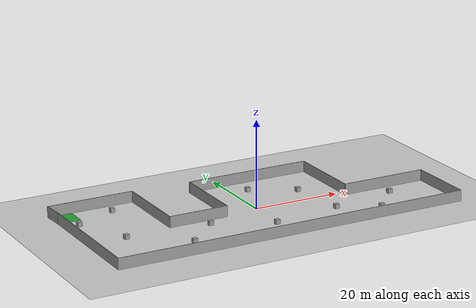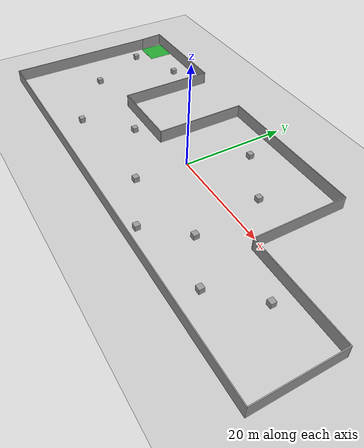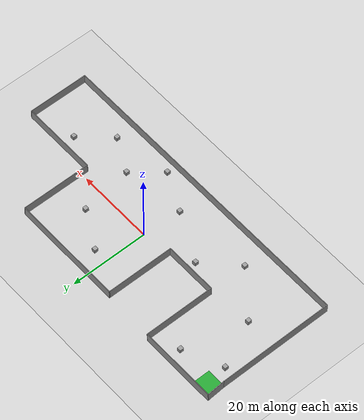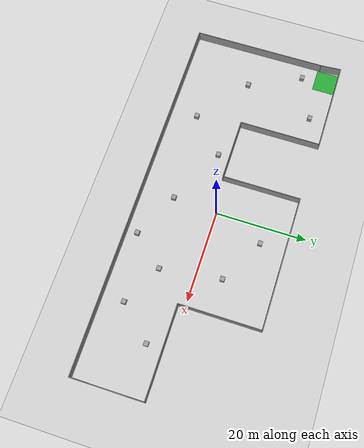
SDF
<sdf version="1.6">
 <world name="default">
  <light name="sun" type="directional">
   <pose>0 0 10 0 -0 0</pose>
   <diffuse>0.8 0.8 0.8 1</diffuse>
   <specular>0.2 0.2 0.2 1</specular>
   <attenuation>
    <range>1000</range>
    <constant>0.9</constant>
    <linear>0.01</linear>
    <quadratic>0.001</quadratic>
   </attenuation>
   <direction>-0.5 0.1 -0.9</direction>
  </light>
  <model name="ground_plane">
   <static>1</static>
   <link name="link">
    <collision name="collision">
     <geometry><plane><normal>0 0 1</normal><size>100 100</size></plane></geometry>
     <surface>
      <contact><collide_bitmask>65535</collide_bitmask></contact>
      <friction><ode><mu>100</mu><mu2>50</mu2></ode></friction>
     </surface>
    </collision>
    <visual name="visual">
     <cast_shadows>0</cast_shadows>
     <geometry><plane><normal>0 0 1</normal><size>100 100</size></plane></geometry>
     <material>
      <script><uri>file://media/materials/scripts/gazebo.material</uri><name>Gazebo/Grey</name></script>
     </material>
    </visual>
   </link>
  </model>
  <gravity>0 0 -9.8</gravity>
  <magnetic_field>6e-06 2.3e-05 -4.2e-05</magnetic_field>
  <atmosphere type="adiabatic"/>
  <physics name="default_physics" default="0" type="ode">
   <max_step_size>0.001</max_step_size>
   <real_time_factor>1</real_time_factor>
   <real_time_update_rate>1000</real_time_update_rate>
  </physics>
  <scene><ambient>0.4 0.4 0.4 1</ambient><background>0.7 0.7 0.7 1</background><shadows>1</shadows></scene>
  <audio><device>default</device></audio>
  <spherical_coordinates>
   <surface_model>EARTH_WGS84</surface_model>
   <latitude_deg>0</latitude_deg>
   <longitude_deg>0</longitude_deg>
   <elevation>0</elevation>
   <heading_deg>0</heading_deg>
  </spherical_coordinates>
  <model name="env_test">
   <link name="Wall_26">
    <collision name="Wall_26_Collision">
     <geometry><box><size>29.75 0.15 2.5</size></box></geometry>
     <pose>0 0 1.25 0 -0 0</pose>
    </collision>
    <visual name="Wall_26_Visual">
     <pose>0 0 1.25 0 -0 0</pose>
     <geometry><box><size>29.75 0.15 2.5</size></box></geometry>
     <material>
      <script><uri>file://media/materials/scripts/gazebo.material</uri><name>Gazebo/Grey</name></script>
      <ambient>1 1 1 1</ambient>
     </material>
     <meta><layer>0</layer></meta>
    </visual>
    <pose>-40.8976 -2.30236 0 0 -0 -1.5708</pose>
   </link>
   <link name="Wall_27">
    <collision name="Wall_27_Collision">
     <geometry><box><size>82.25 0.15 2.5</size></box></geometry>
     <pose>0 0 1.25 0 -0 0</pose>
    </collision>
    <visual name="Wall_27_Visual">
     <pose>0 0 1.25 0 -0 0</pose>
     <geometry><box><size>82.25 0.15 2.5</size></box></geometry>
     <material>
      <script><uri>file://media/materials/scripts/gazebo.material</uri><name>Gazebo/Grey</name></script>
      <ambient>1 1 1 1</ambient>
     </material>
     <meta><layer>0</layer></meta>
    </visual>
    <pose>0.15236 -17.1024 0 0 -0 0</pose>
   </link>
   <link name="Wall_28">
    <collision name="Wall_28_Collision">
     <geometry><box><size>15.75 0.15 2.5</size></box></geometry>
     <pose>0 0 1.25 0 -0 0</pose>
    </collision>
    <visual name="Wall_28_Visual">
     <pose>0 0 1.25 0 -0 0</pose>
     <geometry><box><size>15.75 0.15 2.5</size></box></geometry>
     <material>
      <script><uri>file://media/materials/scripts/gazebo.material</uri><name>Gazebo/Grey</name></script>
      <ambient>1 1 1 1</ambient>
     </material>
     <meta><layer>0</layer></meta>
    </visual>
    <pose>41.2024 -9.30236 0 0 -0 1.5708</pose>
   </link>
   <link name="Wall_29">
    <collision name="Wall_29_Collision">
     <geometry><box><size>20 0.15 2.5</size></box></geometry>
     <pose>0 0 1.25 0 -0 0</pose>
    </collision>
    <visual name="Wall_29_Visual">
     <pose>0 0 1.25 0 -0 0</pose>
     <geometry><box><size>20 0.15 2.5</size></box></geometry>
     <material>
      <script><uri>file://media/materials/scripts/gazebo.material</uri><name>Gazebo/Grey</name></script>
      <ambient>1 1 1 1</ambient>
     </material>
     <meta><layer>0</layer></meta>
    </visual>
    <pose>31.2774 -1.50236 0 0 -0 3.14159</pose>
   </link>
   <link name="Wall_30">
    <collision name="Wall_30_Collision">
     <geometry><box><size>18 0.15 2.5</size></box></geometry>
     <pose>0 0 1.25 0 -0 0</pose>
    </collision>
    <visual name="Wall_30_Visual">
     <pose>0 0 1.25 0 -0 0</pose>
     <geometry><box><size>18 0.15 2.5</size></box></geometry>
     <material>
      <script><uri>file://media/materials/scripts/gazebo.material</uri><name>Gazebo/Grey</name></script>
      <ambient>1 1 1 1</ambient>
     </material>
     <meta><layer>0</layer></meta>
    </visual>
    <pose>21.3524 7.42264 0 0 -0 1.5708</pose>
   </link>
   <link name="Wall_31">
    <collision name="Wall_31_Collision">
     <geometry><box><size>29.25 0.15 2.5</size></box></geometry>
     <pose>0 0 1.25 0 -0 0</pose>
    </collision>
    <visual name="Wall_31_Visual">
     <pose>0 0 1.25 0 -0 0</pose>
     <geometry><box><size>29.25 0.15 2.5</size></box></geometry>
     <material>
      <script><uri>file://media/materials/scripts/gazebo.material</uri><name>Gazebo/Grey</name></script>
      <ambient>1 1 1 1</ambient>
     </material>
     <meta><layer>0</layer></meta>
    </visual>
    <pose>6.80236 16.3476 0 0 -0 3.14159</pose>
   </link>
   <link name="Wall_32">
    <collision name="Wall_32_Collision">
     <geometry><box><size>17.5 0.15 2.5</size></box></geometry>
     <pose>0 0 1.25 0 -0 0</pose>
    </collision>
    <visual name="Wall_32_Visual">
     <pose>0 0 1.25 0 -0 0</pose>
     <geometry><box><size>17.5 0.15 2.5</size></box></geometry>
     <material>
      <script><uri>file://media/materials/scripts/gazebo.material</uri><name>Gazebo/Grey</name></script>
      <ambient>1 1 1 1</ambient>
     </material>
     <meta><layer>0</layer></meta>
    </visual>
    <pose>-7.74764 7.67264 0 0 -0 -1.5708</pose>
   </link>
   <link name="Wall_33">
    <collision name="Wall_33_Collision">
     <geometry><box><size>13.75 0.15 2.5</size></box></geometry>
     <pose>0 0 1.25 0 -0 0</pose>
    </collision>
    <visual name="Wall_33_Visual">
     <pose>0 0 1.25 0 -0 0</pose>
     <geometry><box><size>13.75 0.15 2.5</size></box></geometry>
     <material>
      <script><uri>file://media/materials/scripts/gazebo.material</uri><name>Gazebo/Grey</name></script>
      <ambient>1 1 1 1</ambient>
     </material>
     <meta><layer>0</layer></meta>
    </visual>
    <pose>-14.5476 -1.00236 0 0 -0 3.14159</pose>
   </link>
   <link name="Wall_34">
    <collision name="Wall_34_Collision">
     <geometry><box><size>18.25 0.15 2.5</size></box></geometry>
     <pose>0 0 1.25 0 -0 0</pose>
    </collision>
    <visual name="Wall_34_Visual">
     <pose>0 0 1.25 0 -0 0</pose>
     <geometry><box><size>18.25 0.15 2.5</size></box></geometry>
     <material>
      <script><uri>file://media/materials/scripts/gazebo.material</uri><name>Gazebo/Grey</name></script>
      <ambient>1 1 1 1</ambient>
     </material>
     <meta><layer>0</layer></meta>
    </visual>
    <pose>-21.3476 8.04764 0 0 -0 1.5708</pose>
   </link>
   <link name="Wall_35">
    <collision name="Wall_35_Collision">
     <geometry><box><size>20 0.15 2.5</size></box></geometry>
     <pose>0 0 1.25 0 -0 0</pose>
    </collision>
    <visual name="Wall_35_Visual">
     <pose>0 0 1.25 0 -0 0</pose>
     <geometry><box><size>20 0.15 2.5</size></box></geometry>
     <material>
      <script><uri>file://media/materials/scripts/gazebo.material</uri><name>Gazebo/Grey</name></script>
      <ambient>1 1 1 1</ambient>
     </material>
     <meta><layer>0</layer></meta>
    </visual>
    <pose>-31.2726 17.0976 0 0 -0 3.14159</pose>
   </link>
   <link name="Wall_36">
    <collision name="Wall_36_Collision">
     <geometry><box><size>4.75977 0.15 2.5</size></box></geometry>
     <pose>0 0 1.25 0 -0 0</pose>
    </collision>
    <visual name="Wall_36_Visual">
     <pose>0 0 1.25 0 -0 0</pose>
     <geometry><box><size>4.75977 0.15 2.5</size></box></geometry>
     <material>
      <script><uri>file://media/materials/scripts/gazebo.material</uri><name>Gazebo/Grey</name></script>
      <ambient>1 1 1 1</ambient>
     </material>
     <meta><layer>0</layer></meta>
    </visual>
    <pose>-41.0476 14.7976 0 0 -0 -1.50567</pose>
   </link>
   <static>1</static>
  </model>
  <model name="unit_box">
   <pose>3.77217 10.8709 0.499995 -1e-05 -0 -0</pose>
   <link name="link">
    <inertial>
     <mass>1</mass>
     <inertia>
      <ixx>0.166667</ixx>
      <ixy>0</ixy>
      <ixz>0</ixz>
      <iyy>0.166667</iyy>
      <iyz>0</iyz>
      <izz>0.166667</izz>
     </inertia>
    </inertial>
    <collision name="collision"><geometry><box><size>1 1 1</size></box></geometry></collision>
    <visual name="visual">
     <geometry><box><size>1 1 1</size></box></geometry>
     <material>
      <script><name>Gazebo/Grey</name><uri>file://media/materials/scripts/gazebo.material</uri></script>
     </material>
    </visual>
   </link>
  </model>
  <model name="unit_box_0">
   <pose>13.4717 5.54194 0.499995 0 -1e-05 0</pose>
   <link name="link">
    <inertial>
     <mass>1</mass>
     <inertia>
      <ixx>0.166667</ixx>
      <ixy>0</ixy>
      <ixz>0</ixz>
      <iyy>0.166667</iyy>
      <iyz>0</iyz>
      <izz>0.166667</izz>
     </inertia>
    </inertial>
    <collision name="collision"><geometry><box><size>1 1 1</size></box></geometry></collision>
    <visual name="visual">
     <geometry><box><size>1 1 1</size></box></geometry>
     <material>
      <script><name>Gazebo/Grey</name><uri>file://media/materials/scripts/gazebo.material</uri></script>
     </material>
    </visual>
   </link>
  </model>
  <model name="unit_box_1">
   <pose>15.2684 -7.78132 0.499995 -1e-05 -0 -0</pose>
   <link name="link">
    <inertial>
     <mass>1</mass>
     <inertia>
      <ixx>0.166667</ixx>
      <ixy>0</ixy>
      <ixz>0</ixz>
      <iyy>0.166667</iyy>
      <iyz>0</iyz>
      <izz>0.166667</izz>
     </inertia>
    </inertial>
    <collision name="collision"><geometry><box><size>1 1 1</size></box></geometry></collision>
    <visual name="visual">
     <geometry><box><size>1 1 1</size></box></geometry>
     <material>
      <script><name>Gazebo/Grey</name><uri>file://media/materials/scripts/gazebo.material</uri></script>
     </material>
    </visual>
   </link>
  </model>
  <model name="unit_box_2">
   <pose>-0.556845 -9.86944 0.499995 0 -1e-05 0</pose>
   <link name="link">
    <inertial>
     <mass>1</mass>
     <inertia>
      <ixx>0.166667</ixx>
      <ixy>0</ixy>
      <ixz>0</ixz>
      <iyy>0.166667</iyy>
      <iyz>0</iyz>
      <izz>0.166667</izz>
     </inertia>
    </inertial>
    <collision name="collision"><geometry><box><size>1 1 1</size></box></geometry></collision>
    <visual name="visual">
     <geometry><box><size>1 1 1</size></box></geometry>
     <material>
      <script><name>Gazebo/Grey</name><uri>file://media/materials/scripts/gazebo.material</uri></script>
     </material>
    </visual>
   </link>
  </model>
  <model name="unit_box_3">
   <pose>-13.109 -3.66113 0.499995 -1e-05 -0 -0</pose>
   <link name="link">
    <inertial>
     <mass>1</mass>
     <inertia>
      <ixx>0.166667</ixx>
      <ixy>0</ixy>
      <ixz>0</ixz>
      <iyy>0.166667</iyy>
      <iyz>0</iyz>
      <izz>0.166667</izz>
     </inertia>
    </inertial>
    <collision name="collision"><geometry><box><size>1 1 1</size></box></geometry></collision>
    <visual name="visual">
     <geometry><box><size>1 1 1</size></box></geometry>
     <material>
      <script><name>Gazebo/Grey</name><uri>file://media/materials/scripts/gazebo.material</uri></script>
     </material>
    </visual>
   </link>
  </model>
  <model name="unit_box_4">
   <pose>-27.9383 13.4088 0.499995 0 -1e-05 0</pose>
   <link name="link">
    <inertial>
     <mass>1</mass>
     <inertia>
      <ixx>0.166667</ixx>
      <ixy>0</ixy>
      <ixz>0</ixz>
      <iyy>0.166667</iyy>
      <iyz>0</iyz>
      <izz>0.166667</izz>
     </inertia>
    </inertial>
    <collision name="collision"><geometry><box><size>1 1 1</size></box></geometry></collision>
    <visual name="visual">
     <geometry><box><size>1 1 1</size></box></geometry>
     <material>
      <script><name>Gazebo/Grey</name><uri>file://media/materials/scripts/gazebo.material</uri></script>
     </material>
    </visual>
   </link>
  </model>
  <model name="unit_box_5">
   <pose>-37.5613 9.09361 0.499995 -1e-05 -0 -0</pose>
   <link name="link">
    <inertial>
     <mass>1</mass>
     <inertia>
      <ixx>0.166667</ixx>
      <ixy>0</ixy>
      <ixz>0</ixz>
      <iyy>0.166667</iyy>
      <iyz>0</iyz>
      <izz>0.166667</izz>
     </inertia>
    </inertial>
    <collision name="collision"><geometry><box><size>1 1 1</size></box></geometry></collision>
    <visual name="visual">
     <geometry><box><size>1 1 1</size></box></geometry>
     <material>
      <script><name>Gazebo/Grey</name><uri>file://media/materials/scripts/gazebo.material</uri></script>
     </material>
    </visual>
   </link>
  </model>
  <model name="unit_box_6">
   <pose>-32.059 -2.3492 0.499995 0 -1e-05 0</pose>
   <link name="link">
    <inertial>
     <mass>1</mass>
     <inertia>
      <ixx>0.166667</ixx>
      <ixy>0</ixy>
      <ixz>0</ixz>
      <iyy>0.166667</iyy>
      <iyz>0</iyz>
      <izz>0.166667</izz>
     </inertia>
    </inertial>
    <collision name="collision"><geometry><box><size>1 1 1</size></box></geometry></collision>
    <visual name="visual">
     <geometry><box><size>1 1 1</size></box></geometry>
     <material>
      <script><name>Gazebo/Grey</name><uri>file://media/materials/scripts/gazebo.material</uri></script>
     </material>
    </visual>
   </link>
  </model>
  <model name="unit_box_7">
   <pose>-20.7904 -11.2065 0.499995 -1e-05 -0 -0</pose>
   <link name="link">
    <inertial>
     <mass>1</mass>
     <inertia>
      <ixx>0.166667</ixx>
      <ixy>0</ixy>
      <ixz>0</ixz>
      <iyy>0.166667</iyy>
      <iyz>0</iyz>
      <izz>0.166667</izz>
     </inertia>
    </inertial>
    <collision name="collision"><geometry><box><size>1 1 1</size></box></geometry></collision>
    <visual name="visual">
     <geometry><box><size>1 1 1</size></box></geometry>
     <material>
      <script><name>Gazebo/Grey</name><uri>file://media/materials/scripts/gazebo.material</uri></script>
     </material>
    </visual>
   </link>
  </model>
  <model name="unit_box_8">
   <pose>9.34666 -14.7361 0.499995 0 -1e-05 0</pose>
   <link name="link">
    <inertial>
     <mass>1</mass>
     <inertia>
      <ixx>0.166667</ixx>
      <ixy>0</ixy>
      <ixz>0</ixz>
      <iyy>0.166667</iyy>
      <iyz>0</iyz>
      <izz>0.166667</izz>
     </inertia>
    </inertial>
    <collision name="collision"><geometry><box><size>1 1 1</size></box></geometry></collision>
    <visual name="visual">
     <geometry><box><size>1 1 1</size></box></geometry>
     <material>
      <script><name>Gazebo/Grey</name><uri>file://media/materials/scripts/gazebo.material</uri></script>
     </material>
    </visual>
   </link>
  </model>
  <model name="unit_box_9">
   <pose>23.9829 -12.335 0.499995 -1e-05 -0 -0</pose>
   <link name="link">
    <inertial>
     <mass>1</mass>
     <inertia>
      <ixx>0.166667</ixx>
      <ixy>0</ixy>
      <ixz>0</ixz>
      <iyy>0.166667</iyy>
      <iyz>0</iyz>
      <izz>0.166667</izz>
     </inertia>
    </inertial>
    <collision name="collision"><geometry><box><size>1 1 1</size></box></geometry></collision>
    <visual name="visual">
     <geometry><box><size>1 1 1</size></box></geometry>
     <material>
      <script><name>Gazebo/Grey</name><uri>file://media/materials/scripts/gazebo.material</uri></script>
     </material>
    </visual>
   </link>
  </model>
  <model name="unit_box_10">
   <pose>30.5677 -5.12537 0.499995 0 1e-05 0</pose>
   <link name="link">
    <inertial>
     <mass>1</mass>
     <inertia>
      <ixx>0.166667</ixx>
      <ixy>0</ixy>
      <ixz>0</ixz>
      <iyy>0.166667</iyy>
      <iyz>0</iyz>
      <izz>0.166667</izz>
     </inertia>
    </inertial>
    <collision name="collision"><geometry><box><size>1 1 1</size></box></geometry></collision>
    <visual name="visual">
     <geometry><box><size>1 1 1</size></box></geometry>
     <material>
      <script><name>Gazebo/Grey</name><uri>file://media/materials/scripts/gazebo.material</uri></script>
     </material>
    </visual>
   </link>
  </model>
  <model name="green_platform">
   <link name="link">
    <inertial>
     <mass>1</mass>
     <inertia>
      <ixx>0.166667</ixx>
      <ixy>0</ixy>
      <ixz>0</ixz>
      <iyy>0.166667</iyy>
      <iyz>0</iyz>
      <izz>0.166667</izz>
     </inertia>
    </inertial>
    <visual name="visual">
     <geometry><box><size>5 5 0.02</size></box></geometry>
     <material>
      <script><name>Gazebo/Green</name><uri>file://media/materials/scripts/gazebo.material</uri></script>
      <shader type="pixel"><normal_map>__default__</normal_map></shader>
      <ambient>0 1 0 1</ambient>
      <diffuse>0.1 1 0.1 1</diffuse>
      <specular>0.01 0.01 0.01 1</specular>
      <emissive>0 0 0 1</emissive>
     </material>
     <pose>0 0 0.01 0 -0 0</pose>
    </visual>
   </link>
   <static>1</static>
   <pose>-38.242 14.6045 0 0 -0 0</pose>
  </model>
 </world>
</sdf>
